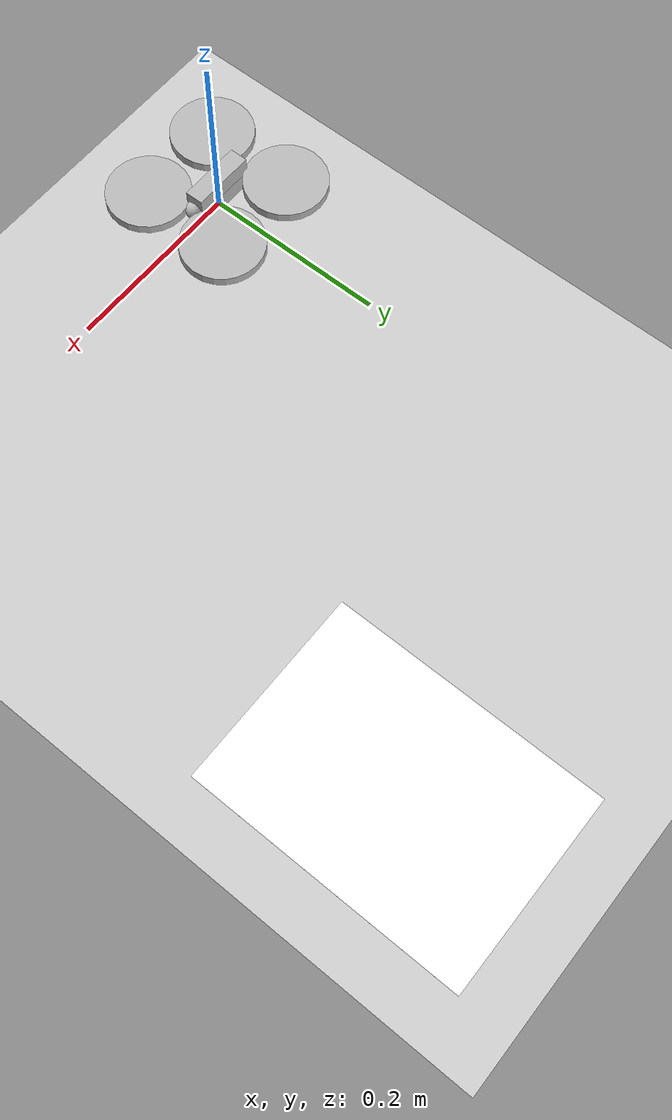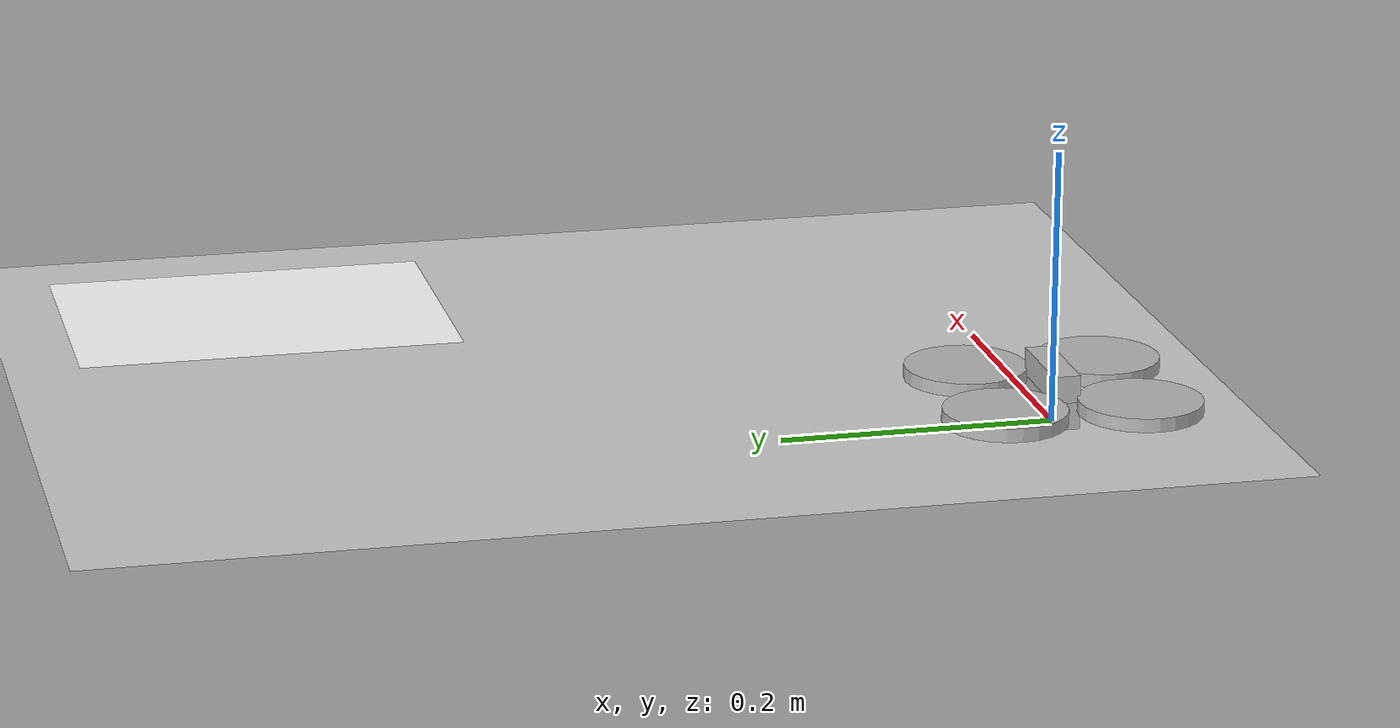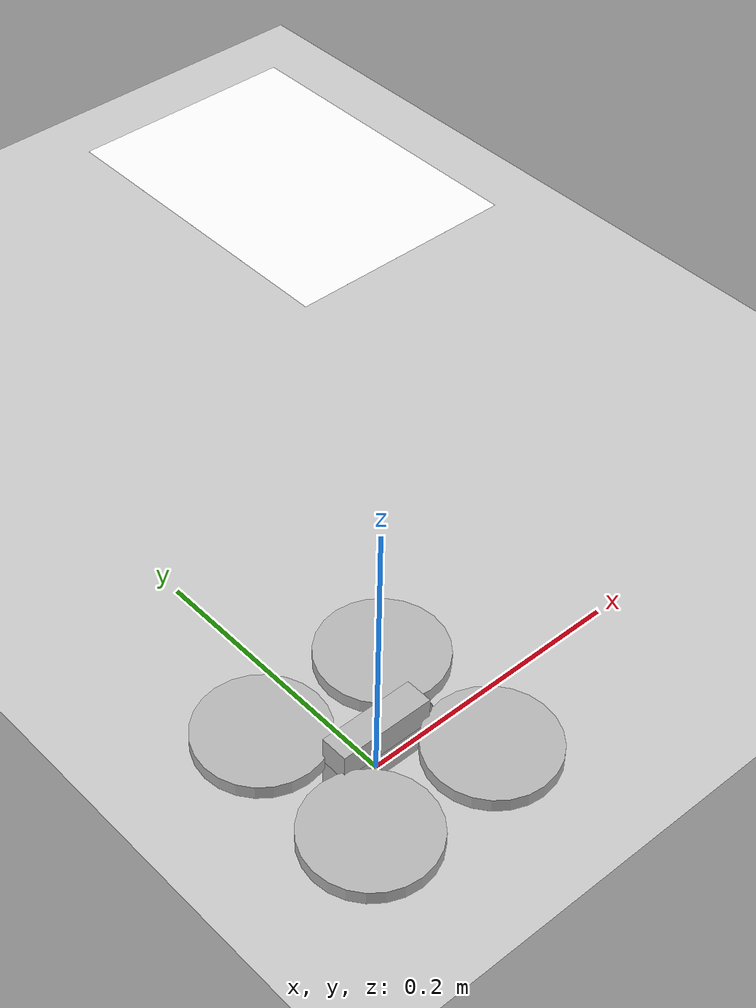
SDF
<sdf version="1.7">
 <world name="default">
  <physics name="normal" type="ode">
   <real_time_update_rate>1000</real_time_update_rate>
   <max_step_size>0.001</max_step_size>
   <real_time_factor>1</real_time_factor>
  </physics>
  <model name="ground_plane">
   <static>1</static>
   <link name="link">
    <collision name="collision">
     <geometry><plane><normal>0 0 1</normal><size>100 100</size></plane></geometry>
     <surface>
      <contact><collide_bitmask>65535</collide_bitmask></contact>
      <friction><ode><mu>100</mu><mu2>50</mu2></ode></friction>
     </surface>
    </collision>
    <visual name="visual">
     <cast_shadows>0</cast_shadows>
     <geometry><plane><normal>0 0 1</normal><size>100 100</size></plane></geometry>
     <material>
      <script><uri>file://media/materials/scripts/gazebo.material</uri><name>Gazebo/Grey</name></script>
     </material>
    </visual>
   </link>
  </model>
  <gravity>0 0 -9.8</gravity>
  <magnetic_field>6e-06 2.3e-05 -4.2e-05</magnetic_field>
  <atmosphere type="adiabatic"/>
  <scene><ambient>0.4 0.4 0.4 1</ambient><background>0.7 0.7 0.7 1</background><shadows>1</shadows></scene>
  <spherical_coordinates>
   <surface_model>EARTH_WGS84</surface_model>
   <latitude_deg>0</latitude_deg>
   <longitude_deg>0</longitude_deg>
   <elevation>0</elevation>
   <heading_deg>0</heading_deg>
  </spherical_coordinates>
  <model name="tello_1">
   <link name="base_link_1">
    <inertial>
     <pose>3e-06 0 0 0 -0 0</pose>
     <mass>0.10001</mass>
     <inertia>
      <ixx>0.000291833</ixx>
      <ixy>0</ixy>
      <ixz>0</ixz>
      <iyy>0.000541012</iyy>
      <iyz>0</iyz>
      <izz>0.000291845</izz>
     </inertia>
    </inertial>
    <collision name="base_link_1_fixed_joint_lump__collision_collision">
     <geometry><box><size>0.18 0.18 0.05</size></box></geometry>
    </collision>
    <collision name="base_link_1_fixed_joint_lump__camera_link_1_collision_1">
     <pose>0.035 0 0 0 -0 0</pose>
     <geometry><sphere><radius>0.01</radius></sphere></geometry>
    </collision>
    <visual name="base_link_1_visual">
     <pose>0 0 0.01 0 -0 0</pose>
     <geometry><box><size>0.07 0.02 0.02</size></box></geometry>
    </visual>
    <visual name="base_link_1_visual_1">
     <pose>0 0 -0.01 0 -0 0</pose>
     <geometry><box><size>0.07 0.02 0.02</size></box></geometry>
    </visual>
    <visual name="base_link_1_visual_2">
     <pose>0.05 -0.05 0 0 -0 0</pose>
     <geometry><cylinder><length>0.01</length><radius>0.045</radius></cylinder></geometry>
    </visual>
    <visual name="base_link_1_visual_3">
     <pose>-0.05 0.05 0 0 -0 0</pose>
     <geometry><cylinder><length>0.01</length><radius>0.045</radius></cylinder></geometry>
    </visual>
    <visual name="base_link_1_visual_4">
     <pose>-0.05 -0.05 0 0 -0 0</pose>
     <geometry><cylinder><length>0.01</length><radius>0.045</radius></cylinder></geometry>
    </visual>
    <visual name="base_link_1_visual_5">
     <pose>0.05 0.05 0 0 -0 0</pose>
     <geometry><cylinder><length>0.01</length><radius>0.045</radius></cylinder></geometry>
    </visual>
    <visual name="base_link_1_fixed_joint_lump__camera_link_1_visual_6">
     <pose>0.035 0 0 0 -0 0</pose>
     <geometry><sphere><radius>0.01</radius></sphere></geometry>
    </visual>
    <sensor name="drone1" type="camera">
     <update_rate>30</update_rate>
     <camera name="head">
      <horizontal_fov>0.96</horizontal_fov>
      <image><width>960</width><height>720</height><format>R8G8B8</format></image>
      <clip><near>0.1</near><far>300</far></clip>
      <noise><type>gaussian</type><mean>0</mean><stddev>0.007</stddev></noise>
     </camera>
     <plugin name="camera_controller_1" filename="libgazebo_ros_camera.so">
      <alwaysOn>1</alwaysOn>
      <updateRate>0.0</updateRate>
      <cameraName>this_is_ignored</cameraName>
      <imageTopicName>image_raw</imageTopicName>
      <cameraInfoTopicName>camera_info</cameraInfoTopicName>
      <frameName>camera_link_1</frameName>
      <hackBaseline>0.07</hackBaseline>
      <distortionK1>0.0</distortionK1>
      <distortionK2>0.0</distortionK2>
      <distortionK3>0.0</distortionK3>
      <distortionT1>0.0</distortionT1>
      <distortionT2>0.0</distortionT2>
     </plugin>
     <pose>0.035 0 0 0 -0 0</pose>
    </sensor>
   </link>
   <plugin name="TelloPlugin" filename="libTelloPlugin.so">
    <namespace>drone1</namespace>
    <parameter name="use_sim_time" type="bool">1</parameter>
    <link_name>base_link_1</link_name>
    <center_of_mass>0 0 0</center_of_mass>
   </plugin>
   <static>0</static>
   <plugin name="ground_truth" filename="libgazebo_ros_p3d.so">
    <frame_name>map</frame_name>
    <body_name>base_link_1</body_name>
    <topic_name>odom</topic_name>
    <update_rate>30.0</update_rate>
   </plugin>
   <pose>-5e-06 0 0.025 0 -0 0</pose>
  </model>
  <model name="marker_3">
   <link name="marker">
    <visual name="visual">
     <geometry><box><size>0.21 0.29 1e-05</size></box></geometry>
     <material>
      <script>
       <uri>model://marker_3/materials/scripts</uri>
       <uri>model://marker_3/materials/textures</uri>
       <name>ArucoVisualMarker3/Marker</name>
      </script>
      <ambient>1 1 1 1</ambient>
      <diffuse>1 1 1 1</diffuse>
      <specular>0 0 0 1</specular>
      <emissive>1 1 1 0</emissive>
      <shader type="vertex"><normal_map>__default__</normal_map></shader>
     </material>
    </visual>
    <collision name="collision"><geometry><box><size>0.21 0.29 1e-05</size></box></geometry></collision>
   </link>
   <link name="marker_pad">
    <pose relative_to="marker">0 0 -0.001 0 -0 0</pose>
    <visual name="visual">
     <geometry><box><size>0.21 0.29 1e-05</size></box></geometry>
     <material>
      <lighting>1</lighting>
      <script><uri>file://media/materials/scripts/gazebo.material</uri><name>Gazebo/White</name></script>
      <ambient>0.3 0.3 0.3 1</ambient>
      <diffuse>0.7 0.7 0.7 1</diffuse>
      <specular>0.01 0.01 0.01 1</specular>
      <emissive>1 1 1 0</emissive>
      <shader type="vertex"><normal_map>__default__</normal_map></shader>
     </material>
    </visual>
    <collision name="collision"><geometry><box><size>0.21 0.29 1e-05</size></box></geometry></collision>
   </link>
   <joint name="marker_JOINT_marker_pad" type="revolute">
    <parent>marker</parent>
    <child>marker_pad</child>
    <axis>
     <xyz>0 0 1</xyz>
     <limit><upper>0</upper><lower>0</lower></limit>
     <dynamics><spring_reference>0</spring_reference><spring_stiffness>0</spring_stiffness></dynamics>
    </axis>
   </joint>
   <static>1</static>
   <pose>0.372414 0.523364 0 0 -0 0</pose>
  </model>
  <light name="user_point_light_0" type="point">
   <pose>0.888934 1.10484 1 0 -0 0</pose>
   <diffuse>0.5 0.5 0.5 1</diffuse>
   <specular>0.1 0.1 0.1 1</specular>
   <attenuation>
    <range>20</range>
    <constant>0.5</constant>
    <linear>0.01</linear>
    <quadratic>0.001</quadratic>
   </attenuation>
   <cast_shadows>0</cast_shadows>
   <direction>0 0 -1</direction>
  </light>
  <light name="sun" type="directional">
   <pose>1.28027 1.71904 10 0 -0 0</pose>
   <diffuse>0.8 0.8 0.8 1</diffuse>
   <specular>0.2 0.2 0.2 1</specular>
   <attenuation>
    <range>1000</range>
    <constant>0.9</constant>
    <linear>0.01</linear>
    <quadratic>0.001</quadratic>
   </attenuation>
   <direction>-0.5 0.1 -0.9</direction>
  </light>
 </world>
</sdf>
